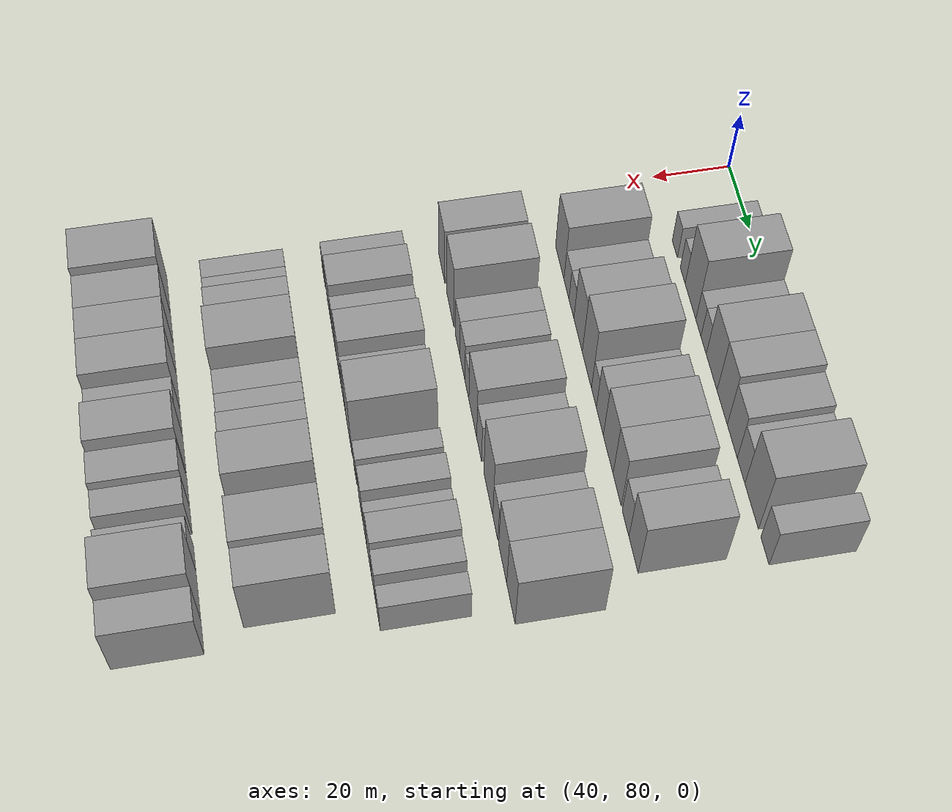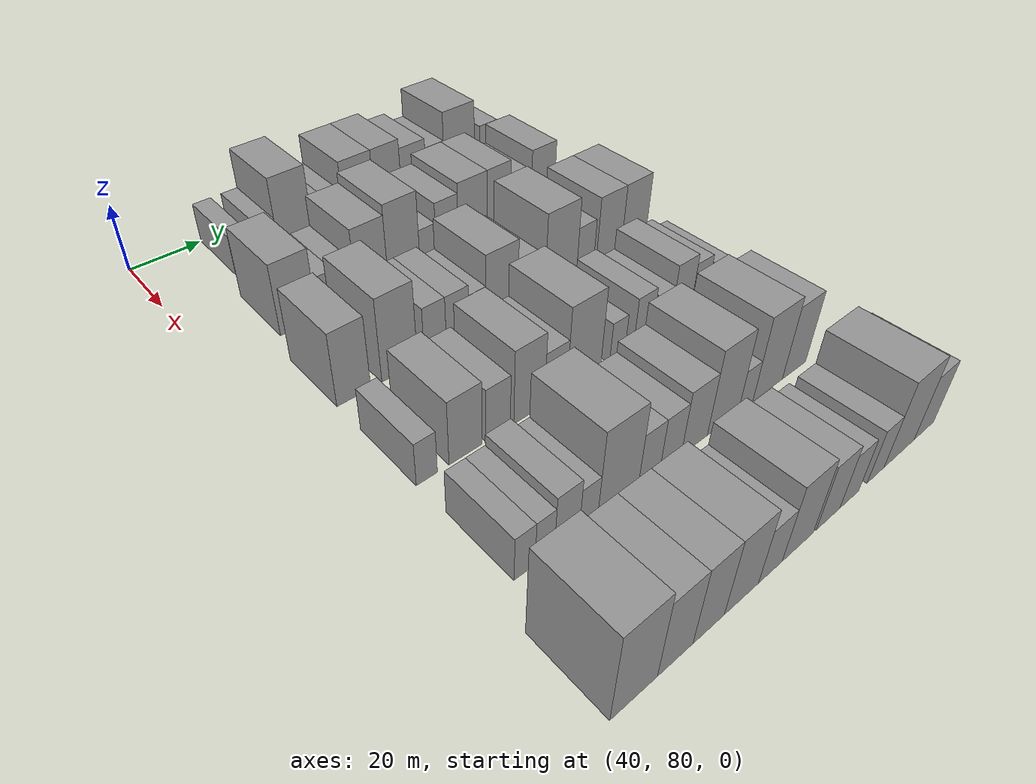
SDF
<sdf version="1.6">
 <world name="default">
  <model name="building_71">
   <static>1</static>
   <pose>50.0000 102.9779 0 0.000000 0.000000 0.000000</pose>
   <link name="link">
    <pose>0 0 6.00 0 0 0</pose>
    <collision name="collision"><geometry><box><size>20.0000 5.2904 12.0000</size></box></geometry></collision>
    <visual name="visual">
     <cast_shadows>0</cast_shadows>
     <geometry><box><size>20.0000 5.2904 12.0000</size></box></geometry>
     <material>
      <script>
       <uri>model://grey_wall/materials/scripts</uri>
       <uri>model://grey_wall/materials/textures</uri>
       <name>vrc/grey_wall</name>
      </script>
     </material>
    </visual>
   </link>
  </model>
  <model name="building_72">
   <static>1</static>
   <pose>50.0000 111.0729 0 0.000000 0.000000 0.000000</pose>
   <link name="link">
    <pose>0 0 6.00 0 0 0</pose>
    <collision name="collision"><geometry><box><size>20.0000 4.8996 12.0000</size></box></geometry></collision>
    <visual name="visual">
     <cast_shadows>0</cast_shadows>
     <geometry><box><size>20.0000 4.8996 12.0000</size></box></geometry>
     <material>
      <script>
       <uri>model://grey_wall/materials/scripts</uri>
       <uri>model://grey_wall/materials/textures</uri>
       <name>vrc/grey_wall</name>
      </script>
     </material>
    </visual>
   </link>
  </model>
  <model name="building_73">
   <static>1</static>
   <pose>50.0000 118.8591 0 0.000000 0.000000 0.000000</pose>
   <link name="link">
    <pose>0 0 12.00 0 0 0</pose>
    <collision name="collision"><geometry><box><size>20.0000 10.6728 24.0000</size></box></geometry></collision>
    <visual name="visual">
     <cast_shadows>0</cast_shadows>
     <geometry><box><size>20.0000 10.6728 24.0000</size></box></geometry>
     <material>
      <script>
       <uri>model://grey_wall/materials/scripts</uri>
       <uri>model://grey_wall/materials/textures</uri>
       <name>vrc/grey_wall</name>
      </script>
     </material>
    </visual>
   </link>
  </model>
  <model name="building_74">
   <static>1</static>
   <pose>50.0000 126.6838 0 0.000000 0.000000 0.000000</pose>
   <link name="link">
    <pose>0 0 6.00 0 0 0</pose>
    <collision name="collision"><geometry><box><size>20.0000 4.9766 12.0000</size></box></geometry></collision>
    <visual name="visual">
     <cast_shadows>0</cast_shadows>
     <geometry><box><size>20.0000 4.9766 12.0000</size></box></geometry>
     <material>
      <script>
       <uri>model://grey_wall/materials/scripts</uri>
       <uri>model://grey_wall/materials/textures</uri>
       <name>vrc/grey_wall</name>
      </script>
     </material>
    </visual>
   </link>
  </model>
  <model name="building_75">
   <static>1</static>
   <pose>50.0000 131.7215 0 0.000000 0.000000 0.000000</pose>
   <link name="link">
    <pose>0 0 6.00 0 0 0</pose>
    <collision name="collision"><geometry><box><size>20.0000 5.0987 12.0000</size></box></geometry></collision>
    <visual name="visual">
     <cast_shadows>0</cast_shadows>
     <geometry><box><size>20.0000 5.0987 12.0000</size></box></geometry>
     <material>
      <script>
       <uri>model://grey_wall/materials/scripts</uri>
       <uri>model://grey_wall/materials/textures</uri>
       <name>vrc/grey_wall</name>
      </script>
     </material>
    </visual>
   </link>
  </model>
  <model name="building_76">
   <static>1</static>
   <pose>50.0000 139.4059 0 0.000000 0.000000 0.000000</pose>
   <link name="link">
    <pose>0 0 10.50 0 0 0</pose>
    <collision name="collision"><geometry><box><size>20.0000 10.2702 21.0000</size></box></geometry></collision>
    <visual name="visual">
     <cast_shadows>0</cast_shadows>
     <geometry><box><size>20.0000 10.2702 21.0000</size></box></geometry>
     <material>
      <script>
       <uri>model://grey_wall/materials/scripts</uri>
       <uri>model://grey_wall/materials/textures</uri>
       <name>vrc/grey_wall</name>
      </script>
     </material>
    </visual>
   </link>
  </model>
  <model name="building_77">
   <static>1</static>
   <pose>50.0000 149.2481 0 0.000000 0.000000 0.000000</pose>
   <link name="link">
    <pose>0 0 10.50 0 0 0</pose>
    <collision name="collision"><geometry><box><size>20.0000 9.4142 21.0000</size></box></geometry></collision>
    <visual name="visual">
     <cast_shadows>0</cast_shadows>
     <geometry><box><size>20.0000 9.4142 21.0000</size></box></geometry>
     <material>
      <script>
       <uri>model://grey_wall/materials/scripts</uri>
       <uri>model://grey_wall/materials/textures</uri>
       <name>vrc/grey_wall</name>
      </script>
     </material>
    </visual>
   </link>
  </model>
  <model name="building_78">
   <static>1</static>
   <pose>50.0000 158.4346 0 0.000000 0.000000 0.000000</pose>
   <link name="link">
    <pose>0 0 9.00 0 0 0</pose>
    <collision name="collision"><geometry><box><size>20.0000 8.9589 18.0000</size></box></geometry></collision>
    <visual name="visual">
     <cast_shadows>0</cast_shadows>
     <geometry><box><size>20.0000 8.9589 18.0000</size></box></geometry>
     <material>
      <script>
       <uri>model://grey_wall/materials/scripts</uri>
       <uri>model://grey_wall/materials/textures</uri>
       <name>vrc/grey_wall</name>
      </script>
     </material>
    </visual>
   </link>
  </model>
  <model name="building_79">
   <static>1</static>
   <pose>50.0000 166.2751 0 0.000000 0.000000 0.000000</pose>
   <link name="link">
    <pose>0 0 7.50 0 0 0</pose>
    <collision name="collision"><geometry><box><size>20.0000 6.7220 15.0000</size></box></geometry></collision>
    <visual name="visual">
     <cast_shadows>0</cast_shadows>
     <geometry><box><size>20.0000 6.7220 15.0000</size></box></geometry>
     <material>
      <script>
       <uri>model://grey_wall/materials/scripts</uri>
       <uri>model://grey_wall/materials/textures</uri>
       <name>vrc/grey_wall</name>
      </script>
     </material>
    </visual>
   </link>
  </model>
  <model name="building_80">
   <static>1</static>
   <pose>50.0000 175.4616 0 0.000000 0.000000 0.000000</pose>
   <link name="link">
    <pose>0 0 12.00 0 0 0</pose>
    <collision name="collision"><geometry><box><size>20.0000 11.6511 24.0000</size></box></geometry></collision>
    <visual name="visual">
     <cast_shadows>0</cast_shadows>
     <geometry><box><size>20.0000 11.6511 24.0000</size></box></geometry>
     <material>
      <script>
       <uri>model://grey_wall/materials/scripts</uri>
       <uri>model://grey_wall/materials/textures</uri>
       <name>vrc/grey_wall</name>
      </script>
     </material>
    </visual>
   </link>
  </model>
  <model name="building_81">
   <static>1</static>
   <pose>50.0000 186.7362 0 0.000000 0.000000 0.000000</pose>
   <link name="link">
    <pose>0 0 7.50 0 0 0</pose>
    <collision name="collision"><geometry><box><size>20.0000 6.8980 15.0000</size></box></geometry></collision>
    <visual name="visual">
     <cast_shadows>0</cast_shadows>
     <geometry><box><size>20.0000 6.8980 15.0000</size></box></geometry>
     <material>
      <script>
       <uri>model://grey_wall/materials/scripts</uri>
       <uri>model://grey_wall/materials/textures</uri>
       <name>vrc/grey_wall</name>
      </script>
     </material>
    </visual>
   </link>
  </model>
  <model name="building_178">
   <static>1</static>
   <pose>79.0000 102.1852 0 0.000000 0.000000 0.000000</pose>
   <link name="link">
    <pose>0 0 10.50 0 0 0</pose>
    <collision name="collision"><geometry><box><size>20.0000 10.2526 21.0000</size></box></geometry></collision>
    <visual name="visual">
     <cast_shadows>0</cast_shadows>
     <geometry><box><size>20.0000 10.2526 21.0000</size></box></geometry>
     <material>
      <script>
       <uri>model://grey_wall/materials/scripts</uri>
       <uri>model://grey_wall/materials/textures</uri>
       <name>vrc/grey_wall</name>
      </script>
     </material>
    </visual>
   </link>
  </model>
  <model name="building_179">
   <static>1</static>
   <pose>79.0000 110.2713 0 0.000000 0.000000 0.000000</pose>
   <link name="link">
    <pose>0 0 6.00 0 0 0</pose>
    <collision name="collision"><geometry><box><size>20.0000 5.9196 12.0000</size></box></geometry></collision>
    <visual name="visual">
     <cast_shadows>0</cast_shadows>
     <geometry><box><size>20.0000 5.9196 12.0000</size></box></geometry>
     <material>
      <script>
       <uri>model://grey_wall/materials/scripts</uri>
       <uri>model://grey_wall/materials/textures</uri>
       <name>vrc/grey_wall</name>
      </script>
     </material>
    </visual>
   </link>
  </model>
  <model name="building_180">
   <static>1</static>
   <pose>79.0000 116.1020 0 0.000000 0.000000 0.000000</pose>
   <link name="link">
    <pose>0 0 6.00 0 0 0</pose>
    <collision name="collision"><geometry><box><size>20.0000 5.7418 12.0000</size></box></geometry></collision>
    <visual name="visual">
     <cast_shadows>0</cast_shadows>
     <geometry><box><size>20.0000 5.7418 12.0000</size></box></geometry>
     <material>
      <script>
       <uri>model://grey_wall/materials/scripts</uri>
       <uri>model://grey_wall/materials/textures</uri>
       <name>vrc/grey_wall</name>
      </script>
     </material>
    </visual>
   </link>
  </model>
  <model name="building_181">
   <static>1</static>
   <pose>79.0000 123.8220 0 0.000000 0.000000 0.000000</pose>
   <link name="link">
    <pose>0 0 10.50 0 0 0</pose>
    <collision name="collision"><geometry><box><size>20.0000 9.6983 21.0000</size></box></geometry></collision>
    <visual name="visual">
     <cast_shadows>0</cast_shadows>
     <geometry><box><size>20.0000 9.6983 21.0000</size></box></geometry>
     <material>
      <script>
       <uri>model://grey_wall/materials/scripts</uri>
       <uri>model://grey_wall/materials/textures</uri>
       <name>vrc/grey_wall</name>
      </script>
     </material>
    </visual>
   </link>
  </model>
  <model name="building_182">
   <static>1</static>
   <pose>79.0000 133.7824 0 0.000000 0.000000 0.000000</pose>
   <link name="link">
    <pose>0 0 12.00 0 0 0</pose>
    <collision name="collision"><geometry><box><size>20.0000 10.2224 24.0000</size></box></geometry></collision>
    <visual name="visual">
     <cast_shadows>0</cast_shadows>
     <geometry><box><size>20.0000 10.2224 24.0000</size></box></geometry>
     <material>
      <script>
       <uri>model://grey_wall/materials/scripts</uri>
       <uri>model://grey_wall/materials/textures</uri>
       <name>vrc/grey_wall</name>
      </script>
     </material>
    </visual>
   </link>
  </model>
  <model name="building_183">
   <static>1</static>
   <pose>79.0000 141.5916 0 0.000000 0.000000 0.000000</pose>
   <link name="link">
    <pose>0 0 6.00 0 0 0</pose>
    <collision name="collision"><geometry><box><size>20.0000 5.3961 12.0000</size></box></geometry></collision>
    <visual name="visual">
     <cast_shadows>0</cast_shadows>
     <geometry><box><size>20.0000 5.3961 12.0000</size></box></geometry>
     <material>
      <script>
       <uri>model://grey_wall/materials/scripts</uri>
       <uri>model://grey_wall/materials/textures</uri>
       <name>vrc/grey_wall</name>
      </script>
     </material>
    </visual>
   </link>
  </model>
  <model name="building_184">
   <static>1</static>
   <pose>79.0000 148.0615 0 0.000000 0.000000 0.000000</pose>
   <link name="link">
    <pose>0 0 9.00 0 0 0</pose>
    <collision name="collision"><geometry><box><size>20.0000 7.5436 18.0000</size></box></geometry></collision>
    <visual name="visual">
     <cast_shadows>0</cast_shadows>
     <geometry><box><size>20.0000 7.5436 18.0000</size></box></geometry>
     <material>
      <script>
       <uri>model://grey_wall/materials/scripts</uri>
       <uri>model://grey_wall/materials/textures</uri>
       <name>vrc/grey_wall</name>
      </script>
     </material>
    </visual>
   </link>
  </model>
  <model name="building_185">
   <static>1</static>
   <pose>79.0000 156.9551 0 0.000000 0.000000 0.000000</pose>
   <link name="link">
    <pose>0 0 10.50 0 0 0</pose>
    <collision name="collision"><geometry><box><size>20.0000 10.2437 21.0000</size></box></geometry></collision>
    <visual name="visual">
     <cast_shadows>0</cast_shadows>
     <geometry><box><size>20.0000 10.2437 21.0000</size></box></geometry>
     <material>
      <script>
       <uri>model://grey_wall/materials/scripts</uri>
       <uri>model://grey_wall/materials/textures</uri>
       <name>vrc/grey_wall</name>
      </script>
     </material>
    </visual>
   </link>
  </model>
  <model name="building_186">
   <static>1</static>
   <pose>79.0000 166.2853 0 0.000000 0.000000 0.000000</pose>
   <link name="link">
    <pose>0 0 10.50 0 0 0</pose>
    <collision name="collision"><geometry><box><size>20.0000 8.4167 21.0000</size></box></geometry></collision>
    <visual name="visual">
     <cast_shadows>0</cast_shadows>
     <geometry><box><size>20.0000 8.4167 21.0000</size></box></geometry>
     <material>
      <script>
       <uri>model://grey_wall/materials/scripts</uri>
       <uri>model://grey_wall/materials/textures</uri>
       <name>vrc/grey_wall</name>
      </script>
     </material>
    </visual>
   </link>
  </model>
  <model name="building_187">
   <static>1</static>
   <pose>79.0000 174.8404 0 0.000000 0.000000 0.000000</pose>
   <link name="link">
    <pose>0 0 7.50 0 0 0</pose>
    <collision name="collision"><geometry><box><size>20.0000 6.6935 15.0000</size></box></geometry></collision>
    <visual name="visual">
     <cast_shadows>0</cast_shadows>
     <geometry><box><size>20.0000 6.6935 15.0000</size></box></geometry>
     <material>
      <script>
       <uri>model://grey_wall/materials/scripts</uri>
       <uri>model://grey_wall/materials/textures</uri>
       <name>vrc/grey_wall</name>
      </script>
     </material>
    </visual>
   </link>
  </model>
  <model name="building_188">
   <static>1</static>
   <pose>79.0000 182.7150 0 0.000000 0.000000 0.000000</pose>
   <link name="link">
    <pose>0 0 10.50 0 0 0</pose>
    <collision name="collision"><geometry><box><size>20.0000 9.0557 21.0000</size></box></geometry></collision>
    <visual name="visual">
     <cast_shadows>0</cast_shadows>
     <geometry><box><size>20.0000 9.0557 21.0000</size></box></geometry>
     <material>
      <script>
       <uri>model://grey_wall/materials/scripts</uri>
       <uri>model://grey_wall/materials/textures</uri>
       <name>vrc/grey_wall</name>
      </script>
     </material>
    </visual>
   </link>
  </model>
  <model name="building_297">
   <static>1</static>
   <pose>108.0000 98.9713 0 0.000000 0.000000 0.000000</pose>
   <link name="link">
    <pose>0 0 10.50 0 0 0</pose>
    <collision name="collision"><geometry><box><size>20.0000 8.9882 21.0000</size></box></geometry></collision>
    <visual name="visual">
     <cast_shadows>0</cast_shadows>
     <geometry><box><size>20.0000 8.9882 21.0000</size></box></geometry>
     <material>
      <script>
       <uri>model://grey_wall/materials/scripts</uri>
       <uri>model://grey_wall/materials/textures</uri>
       <name>vrc/grey_wall</name>
      </script>
     </material>
    </visual>
   </link>
  </model>
  <model name="building_298">
   <static>1</static>
   <pose>108.0000 111.4779 0 0.000000 0.000000 0.000000</pose>
   <link name="link">
    <pose>0 0 12.00 0 0 0</pose>
    <collision name="collision"><geometry><box><size>20.0000 10.0250 24.0000</size></box></geometry></collision>
    <visual name="visual">
     <cast_shadows>0</cast_shadows>
     <geometry><box><size>20.0000 10.0250 24.0000</size></box></geometry>
     <material>
      <script>
       <uri>model://grey_wall/materials/scripts</uri>
       <uri>model://grey_wall/materials/textures</uri>
       <name>vrc/grey_wall</name>
      </script>
     </material>
    </visual>
   </link>
  </model>
  <model name="building_299">
   <static>1</static>
   <pose>108.0000 121.7499 0 0.000000 0.000000 0.000000</pose>
   <link name="link">
    <pose>0 0 7.50 0 0 0</pose>
    <collision name="collision"><geometry><box><size>20.0000 6.5190 15.0000</size></box></geometry></collision>
    <visual name="visual">
     <cast_shadows>0</cast_shadows>
     <geometry><box><size>20.0000 6.5190 15.0000</size></box></geometry>
     <material>
      <script>
       <uri>model://grey_wall/materials/scripts</uri>
       <uri>model://grey_wall/materials/textures</uri>
       <name>vrc/grey_wall</name>
      </script>
     </material>
    </visual>
   </link>
  </model>
  <model name="building_300">
   <static>1</static>
   <pose>108.0000 128.4428 0 0.000000 0.000000 0.000000</pose>
   <link name="link">
    <pose>0 0 7.50 0 0 0</pose>
    <collision name="collision"><geometry><box><size>20.0000 6.8668 15.0000</size></box></geometry></collision>
    <visual name="visual">
     <cast_shadows>0</cast_shadows>
     <geometry><box><size>20.0000 6.8668 15.0000</size></box></geometry>
     <material>
      <script>
       <uri>model://grey_wall/materials/scripts</uri>
       <uri>model://grey_wall/materials/textures</uri>
       <name>vrc/grey_wall</name>
      </script>
     </material>
    </visual>
   </link>
  </model>
  <model name="building_301">
   <static>1</static>
   <pose>108.0000 134.5554 0 0.000000 0.000000 0.000000</pose>
   <link name="link">
    <pose>0 0 6.00 0 0 0</pose>
    <collision name="collision"><geometry><box><size>20.0000 5.3585 12.0000</size></box></geometry></collision>
    <visual name="visual">
     <cast_shadows>0</cast_shadows>
     <geometry><box><size>20.0000 5.3585 12.0000</size></box></geometry>
     <material>
      <script>
       <uri>model://grey_wall/materials/scripts</uri>
       <uri>model://grey_wall/materials/textures</uri>
       <name>vrc/grey_wall</name>
      </script>
     </material>
    </visual>
   </link>
  </model>
  <model name="building_302">
   <static>1</static>
   <pose>108.0000 142.3782 0 0.000000 0.000000 0.000000</pose>
   <link name="link">
    <pose>0 0 10.50 0 0 0</pose>
    <collision name="collision"><geometry><box><size>20.0000 10.2870 21.0000</size></box></geometry></collision>
    <visual name="visual">
     <cast_shadows>0</cast_shadows>
     <geometry><box><size>20.0000 10.2870 21.0000</size></box></geometry>
     <material>
      <script>
       <uri>model://grey_wall/materials/scripts</uri>
       <uri>model://grey_wall/materials/textures</uri>
       <name>vrc/grey_wall</name>
      </script>
     </material>
    </visual>
   </link>
  </model>
  <model name="building_303">
   <static>1</static>
   <pose>108.0000 150.6469 0 0.000000 0.000000 0.000000</pose>
   <link name="link">
    <pose>0 0 7.50 0 0 0</pose>
    <collision name="collision"><geometry><box><size>20.0000 6.2504 15.0000</size></box></geometry></collision>
    <visual name="visual">
     <cast_shadows>0</cast_shadows>
     <geometry><box><size>20.0000 6.2504 15.0000</size></box></geometry>
     <material>
      <script>
       <uri>model://grey_wall/materials/scripts</uri>
       <uri>model://grey_wall/materials/textures</uri>
       <name>vrc/grey_wall</name>
      </script>
     </material>
    </visual>
   </link>
  </model>
  <model name="building_304">
   <static>1</static>
   <pose>108.0000 162.3793 0 0.000000 0.000000 0.000000</pose>
   <link name="link">
    <pose>0 0 12.00 0 0 0</pose>
    <collision name="collision"><geometry><box><size>20.0000 11.2144 24.0000</size></box></geometry></collision>
    <visual name="visual">
     <cast_shadows>0</cast_shadows>
     <geometry><box><size>20.0000 11.2144 24.0000</size></box></geometry>
     <material>
      <script>
       <uri>model://grey_wall/materials/scripts</uri>
       <uri>model://grey_wall/materials/textures</uri>
       <name>vrc/grey_wall</name>
      </script>
     </material>
    </visual>
   </link>
  </model>
  <model name="building_305">
   <static>1</static>
   <pose>108.0000 171.1098 0 0.000000 0.000000 0.000000</pose>
   <link name="link">
    <pose>0 0 7.50 0 0 0</pose>
    <collision name="collision"><geometry><box><size>20.0000 6.2465 15.0000</size></box></geometry></collision>
    <visual name="visual">
     <cast_shadows>0</cast_shadows>
     <geometry><box><size>20.0000 6.2465 15.0000</size></box></geometry>
     <material>
      <script>
       <uri>model://grey_wall/materials/scripts</uri>
       <uri>model://grey_wall/materials/textures</uri>
       <name>vrc/grey_wall</name>
      </script>
     </material>
    </visual>
   </link>
  </model>
  <model name="building_306">
   <static>1</static>
   <pose>108.0000 180.0224 0 0.000000 0.000000 0.000000</pose>
   <link name="link">
    <pose>0 0 10.50 0 0 0</pose>
    <collision name="collision"><geometry><box><size>20.0000 9.5787 21.0000</size></box></geometry></collision>
    <visual name="visual">
     <cast_shadows>0</cast_shadows>
     <geometry><box><size>20.0000 9.5787 21.0000</size></box></geometry>
     <material>
      <script>
       <uri>model://grey_wall/materials/scripts</uri>
       <uri>model://grey_wall/materials/textures</uri>
       <name>vrc/grey_wall</name>
      </script>
     </material>
    </visual>
   </link>
  </model>
  <model name="building_307">
   <static>1</static>
   <pose>108.0000 189.6733 0 0.000000 0.000000 0.000000</pose>
   <link name="link">
    <pose>0 0 10.50 0 0 0</pose>
    <collision name="collision"><geometry><box><size>20.0000 9.7231 21.0000</size></box></geometry></collision>
    <visual name="visual">
     <cast_shadows>0</cast_shadows>
     <geometry><box><size>20.0000 9.7231 21.0000</size></box></geometry>
     <material>
      <script>
       <uri>model://grey_wall/materials/scripts</uri>
       <uri>model://grey_wall/materials/textures</uri>
       <name>vrc/grey_wall</name>
      </script>
     </material>
    </visual>
   </link>
  </model>
  <model name="building_409">
   <static>1</static>
   <pose>137.0000 97.3479 0 0.000000 0.000000 0.000000</pose>
   <link name="link">
    <pose>0 0 6.00 0 0 0</pose>
    <collision name="collision"><geometry><box><size>20.0000 5.3239 12.0000</size></box></geometry></collision>
    <visual name="visual">
     <cast_shadows>0</cast_shadows>
     <geometry><box><size>20.0000 5.3239 12.0000</size></box></geometry>
     <material>
      <script>
       <uri>model://grey_wall/materials/scripts</uri>
       <uri>model://grey_wall/materials/textures</uri>
       <name>vrc/grey_wall</name>
      </script>
     </material>
    </visual>
   </link>
  </model>
  <model name="building_410">
   <static>1</static>
   <pose>137.0000 107.4400 0 0.000000 0.000000 0.000000</pose>
   <link name="link">
    <pose>0 0 9.00 0 0 0</pose>
    <collision name="collision"><geometry><box><size>20.0000 8.8602 18.0000</size></box></geometry></collision>
    <visual name="visual">
     <cast_shadows>0</cast_shadows>
     <geometry><box><size>20.0000 8.8602 18.0000</size></box></geometry>
     <material>
      <script>
       <uri>model://grey_wall/materials/scripts</uri>
       <uri>model://grey_wall/materials/textures</uri>
       <name>vrc/grey_wall</name>
      </script>
     </material>
    </visual>
   </link>
  </model>
  <model name="building_411">
   <static>1</static>
   <pose>137.0000 116.2746 0 0.000000 0.000000 0.000000</pose>
   <link name="link">
    <pose>0 0 7.50 0 0 0</pose>
    <collision name="collision"><geometry><box><size>20.0000 6.8091 15.0000</size></box></geometry></collision>
    <visual name="visual">
     <cast_shadows>0</cast_shadows>
     <geometry><box><size>20.0000 6.8091 15.0000</size></box></geometry>
     <material>
      <script>
       <uri>model://grey_wall/materials/scripts</uri>
       <uri>model://grey_wall/materials/textures</uri>
       <name>vrc/grey_wall</name>
      </script>
     </material>
    </visual>
   </link>
  </model>
  <model name="building_412">
   <static>1</static>
   <pose>137.0000 125.1490 0 0.000000 0.000000 0.000000</pose>
   <link name="link">
    <pose>0 0 10.50 0 0 0</pose>
    <collision name="collision"><geometry><box><size>20.0000 8.9396 21.0000</size></box></geometry></collision>
    <visual name="visual">
     <cast_shadows>0</cast_shadows>
     <geometry><box><size>20.0000 8.9396 21.0000</size></box></geometry>
     <material>
      <script>
       <uri>model://grey_wall/materials/scripts</uri>
       <uri>model://grey_wall/materials/textures</uri>
       <name>vrc/grey_wall</name>
      </script>
     </material>
    </visual>
   </link>
  </model>
  <model name="building_413">
   <static>1</static>
   <pose>137.0000 133.0528 0 0.000000 0.000000 0.000000</pose>
   <link name="link">
    <pose>0 0 7.50 0 0 0</pose>
    <collision name="collision"><geometry><box><size>20.0000 6.8679 15.0000</size></box></geometry></collision>
    <visual name="visual">
     <cast_shadows>0</cast_shadows>
     <geometry><box><size>20.0000 6.8679 15.0000</size></box></geometry>
     <material>
      <script>
       <uri>model://grey_wall/materials/scripts</uri>
       <uri>model://grey_wall/materials/textures</uri>
       <name>vrc/grey_wall</name>
      </script>
     </material>
    </visual>
   </link>
  </model>
  <model name="building_414">
   <static>1</static>
   <pose>137.0000 141.8436 0 0.000000 0.000000 0.000000</pose>
   <link name="link">
    <pose>0 0 12.00 0 0 0</pose>
    <collision name="collision"><geometry><box><size>20.0000 10.7137 24.0000</size></box></geometry></collision>
    <visual name="visual">
     <cast_shadows>0</cast_shadows>
     <geometry><box><size>20.0000 10.7137 24.0000</size></box></geometry>
     <material>
      <script>
       <uri>model://grey_wall/materials/scripts</uri>
       <uri>model://grey_wall/materials/textures</uri>
       <name>vrc/grey_wall</name>
      </script>
     </material>
    </visual>
   </link>
  </model>
  <model name="building_415">
   <static>1</static>
   <pose>137.0000 152.7189 0 0.000000 0.000000 0.000000</pose>
   <link name="link">
    <pose>0 0 6.00 0 0 0</pose>
    <collision name="collision"><geometry><box><size>20.0000 5.0369 12.0000</size></box></geometry></collision>
    <visual name="visual">
     <cast_shadows>0</cast_shadows>
     <geometry><box><size>20.0000 5.0369 12.0000</size></box></geometry>
     <material>
      <script>
       <uri>model://grey_wall/materials/scripts</uri>
       <uri>model://grey_wall/materials/textures</uri>
       <name>vrc/grey_wall</name>
      </script>
     </material>
    </visual>
   </link>
  </model>
  <model name="building_416">
   <static>1</static>
   <pose>137.0000 161.4626 0 0.000000 0.000000 0.000000</pose>
   <link name="link">
    <pose>0 0 7.50 0 0 0</pose>
    <collision name="collision"><geometry><box><size>20.0000 6.4505 15.0000</size></box></geometry></collision>
    <visual name="visual">
     <cast_shadows>0</cast_shadows>
     <geometry><box><size>20.0000 6.4505 15.0000</size></box></geometry>
     <material>
      <script>
       <uri>model://grey_wall/materials/scripts</uri>
       <uri>model://grey_wall/materials/textures</uri>
       <name>vrc/grey_wall</name>
      </script>
     </material>
    </visual>
   </link>
  </model>
  <model name="building_417">
   <static>1</static>
   <pose>137.0000 168.5915 0 0.000000 0.000000 0.000000</pose>
   <link name="link">
    <pose>0 0 6.00 0 0 0</pose>
    <collision name="collision"><geometry><box><size>20.0000 5.8073 12.0000</size></box></geometry></collision>
    <visual name="visual">
     <cast_shadows>0</cast_shadows>
     <geometry><box><size>20.0000 5.8073 12.0000</size></box></geometry>
     <material>
      <script>
       <uri>model://grey_wall/materials/scripts</uri>
       <uri>model://grey_wall/materials/textures</uri>
       <name>vrc/grey_wall</name>
      </script>
     </material>
    </visual>
   </link>
  </model>
  <model name="building_418">
   <static>1</static>
   <pose>137.0000 175.1611 0 0.000000 0.000000 0.000000</pose>
   <link name="link">
    <pose>0 0 9.00 0 0 0</pose>
    <collision name="collision"><geometry><box><size>20.0000 7.3321 18.0000</size></box></geometry></collision>
    <visual name="visual">
     <cast_shadows>0</cast_shadows>
     <geometry><box><size>20.0000 7.3321 18.0000</size></box></geometry>
     <material>
      <script>
       <uri>model://grey_wall/materials/scripts</uri>
       <uri>model://grey_wall/materials/textures</uri>
       <name>vrc/grey_wall</name>
      </script>
     </material>
    </visual>
   </link>
  </model>
  <model name="building_419">
   <static>1</static>
   <pose>137.0000 181.8588 0 0.000000 0.000000 0.000000</pose>
   <link name="link">
    <pose>0 0 7.50 0 0 0</pose>
    <collision name="collision"><geometry><box><size>20.0000 6.0633 15.0000</size></box></geometry></collision>
    <visual name="visual">
     <cast_shadows>0</cast_shadows>
     <geometry><box><size>20.0000 6.0633 15.0000</size></box></geometry>
     <material>
      <script>
       <uri>model://grey_wall/materials/scripts</uri>
       <uri>model://grey_wall/materials/textures</uri>
       <name>vrc/grey_wall</name>
      </script>
     </material>
    </visual>
   </link>
  </model>
  <model name="building_420">
   <static>1</static>
   <pose>137.0000 188.4923 0 0.000000 0.000000 0.000000</pose>
   <link name="link">
    <pose>0 0 6.00 0 0 0</pose>
    <collision name="collision"><geometry><box><size>20.0000 5.2036 12.0000</size></box></geometry></collision>
    <visual name="visual">
     <cast_shadows>0</cast_shadows>
     <geometry><box><size>20.0000 5.2036 12.0000</size></box></geometry>
     <material>
      <script>
       <uri>model://grey_wall/materials/scripts</uri>
       <uri>model://grey_wall/materials/textures</uri>
       <name>vrc/grey_wall</name>
      </script>
     </material>
    </visual>
   </link>
  </model>
  <model name="building_521">
   <static>1</static>
   <pose>166.0000 97.7814 0 0.000000 0.000000 0.000000</pose>
   <link name="link">
    <pose>0 0 6.00 0 0 0</pose>
    <collision name="collision"><geometry><box><size>20.0000 5.1542 12.0000</size></box></geometry></collision>
    <visual name="visual">
     <cast_shadows>0</cast_shadows>
     <geometry><box><size>20.0000 5.1542 12.0000</size></box></geometry>
     <material>
      <script>
       <uri>model://grey_wall/materials/scripts</uri>
       <uri>model://grey_wall/materials/textures</uri>
       <name>vrc/grey_wall</name>
      </script>
     </material>
    </visual>
   </link>
  </model>
  <model name="building_522">
   <static>1</static>
   <pose>166.0000 102.7958 0 0.000000 0.000000 0.000000</pose>
   <link name="link">
    <pose>0 0 6.00 0 0 0</pose>
    <collision name="collision"><geometry><box><size>20.0000 4.8746 12.0000</size></box></geometry></collision>
    <visual name="visual">
     <cast_shadows>0</cast_shadows>
     <geometry><box><size>20.0000 4.8746 12.0000</size></box></geometry>
     <material>
      <script>
       <uri>model://grey_wall/materials/scripts</uri>
       <uri>model://grey_wall/materials/textures</uri>
       <name>vrc/grey_wall</name>
      </script>
     </material>
    </visual>
   </link>
  </model>
  <model name="building_523">
   <static>1</static>
   <pose>166.0000 108.4774 0 0.000000 0.000000 0.000000</pose>
   <link name="link">
    <pose>0 0 7.50 0 0 0</pose>
    <collision name="collision"><geometry><box><size>20.0000 6.4887 15.0000</size></box></geometry></collision>
    <visual name="visual">
     <cast_shadows>0</cast_shadows>
     <geometry><box><size>20.0000 6.4887 15.0000</size></box></geometry>
     <material>
      <script>
       <uri>model://grey_wall/materials/scripts</uri>
       <uri>model://grey_wall/materials/textures</uri>
       <name>vrc/grey_wall</name>
      </script>
     </material>
    </visual>
   </link>
  </model>
  <model name="building_524">
   <static>1</static>
   <pose>166.0000 114.2203 0 0.000000 0.000000 0.000000</pose>
   <link name="link">
    <pose>0 0 6.00 0 0 0</pose>
    <collision name="collision"><geometry><box><size>20.0000 4.9970 12.0000</size></box></geometry></collision>
    <visual name="visual">
     <cast_shadows>0</cast_shadows>
     <geometry><box><size>20.0000 4.9970 12.0000</size></box></geometry>
     <material>
      <script>
       <uri>model://grey_wall/materials/scripts</uri>
       <uri>model://grey_wall/materials/textures</uri>
       <name>vrc/grey_wall</name>
      </script>
     </material>
    </visual>
   </link>
  </model>
  <model name="building_525">
   <static>1</static>
   <pose>166.0000 122.4583 0 0.000000 0.000000 0.000000</pose>
   <link name="link">
    <pose>0 0 12.00 0 0 0</pose>
    <collision name="collision"><geometry><box><size>20.0000 11.4790 24.0000</size></box></geometry></collision>
    <visual name="visual">
     <cast_shadows>0</cast_shadows>
     <geometry><box><size>20.0000 11.4790 24.0000</size></box></geometry>
     <material>
      <script>
       <uri>model://grey_wall/materials/scripts</uri>
       <uri>model://grey_wall/materials/textures</uri>
       <name>vrc/grey_wall</name>
      </script>
     </material>
    </visual>
   </link>
  </model>
  <model name="building_526">
   <static>1</static>
   <pose>166.0000 131.4412 0 0.000000 0.000000 0.000000</pose>
   <link name="link">
    <pose>0 0 7.50 0 0 0</pose>
    <collision name="collision"><geometry><box><size>20.0000 6.4867 15.0000</size></box></geometry></collision>
    <visual name="visual">
     <cast_shadows>0</cast_shadows>
     <geometry><box><size>20.0000 6.4867 15.0000</size></box></geometry>
     <material>
      <script>
       <uri>model://grey_wall/materials/scripts</uri>
       <uri>model://grey_wall/materials/textures</uri>
       <name>vrc/grey_wall</name>
      </script>
     </material>
    </visual>
   </link>
  </model>
  <model name="building_527">
   <static>1</static>
   <pose>166.0000 138.0143 0 0.000000 0.000000 0.000000</pose>
   <link name="link">
    <pose>0 0 7.50 0 0 0</pose>
    <collision name="collision"><geometry><box><size>20.0000 6.6596 15.0000</size></box></geometry></collision>
    <visual name="visual">
     <cast_shadows>0</cast_shadows>
     <geometry><box><size>20.0000 6.6596 15.0000</size></box></geometry>
     <material>
      <script>
       <uri>model://grey_wall/materials/scripts</uri>
       <uri>model://grey_wall/materials/textures</uri>
       <name>vrc/grey_wall</name>
      </script>
     </material>
    </visual>
   </link>
  </model>
  <model name="building_528">
   <static>1</static>
   <pose>166.0000 145.5884 0 0.000000 0.000000 0.000000</pose>
   <link name="link">
    <pose>0 0 9.00 0 0 0</pose>
    <collision name="collision"><geometry><box><size>20.0000 8.4886 18.0000</size></box></geometry></collision>
    <visual name="visual">
     <cast_shadows>0</cast_shadows>
     <geometry><box><size>20.0000 8.4886 18.0000</size></box></geometry>
     <material>
      <script>
       <uri>model://grey_wall/materials/scripts</uri>
       <uri>model://grey_wall/materials/textures</uri>
       <name>vrc/grey_wall</name>
      </script>
     </material>
    </visual>
   </link>
  </model>
  <model name="building_529">
   <static>1</static>
   <pose>166.0000 155.0815 0 0.000000 0.000000 0.000000</pose>
   <link name="link">
    <pose>0 0 12.00 0 0 0</pose>
    <collision name="collision"><geometry><box><size>20.0000 10.4975 24.0000</size></box></geometry></collision>
    <visual name="visual">
     <cast_shadows>0</cast_shadows>
     <geometry><box><size>20.0000 10.4975 24.0000</size></box></geometry>
     <material>
      <script>
       <uri>model://grey_wall/materials/scripts</uri>
       <uri>model://grey_wall/materials/textures</uri>
       <name>vrc/grey_wall</name>
      </script>
     </material>
    </visual>
   </link>
  </model>
  <model name="building_530">
   <static>1</static>
   <pose>166.0000 162.9344 0 0.000000 0.000000 0.000000</pose>
   <link name="link">
    <pose>0 0 6.00 0 0 0</pose>
    <collision name="collision"><geometry><box><size>20.0000 5.2083 12.0000</size></box></geometry></collision>
    <visual name="visual">
     <cast_shadows>0</cast_shadows>
     <geometry><box><size>20.0000 5.2083 12.0000</size></box></geometry>
     <material>
      <script>
       <uri>model://grey_wall/materials/scripts</uri>
       <uri>model://grey_wall/materials/textures</uri>
       <name>vrc/grey_wall</name>
      </script>
     </material>
    </visual>
   </link>
  </model>
  <model name="building_531">
   <static>1</static>
   <pose>166.0000 170.9725 0 0.000000 0.000000 0.000000</pose>
   <link name="link">
    <pose>0 0 12.00 0 0 0</pose>
    <collision name="collision"><geometry><box><size>20.0000 10.8679 24.0000</size></box></geometry></collision>
    <visual name="visual">
     <cast_shadows>0</cast_shadows>
     <geometry><box><size>20.0000 10.8679 24.0000</size></box></geometry>
     <material>
      <script>
       <uri>model://grey_wall/materials/scripts</uri>
       <uri>model://grey_wall/materials/textures</uri>
       <name>vrc/grey_wall</name>
      </script>
     </material>
    </visual>
   </link>
  </model>
  <model name="building_532">
   <static>1</static>
   <pose>166.0000 180.9080 0 0.000000 0.000000 0.000000</pose>
   <link name="link">
    <pose>0 0 10.50 0 0 0</pose>
    <collision name="collision"><geometry><box><size>20.0000 9.0032 21.0000</size></box></geometry></collision>
    <visual name="visual">
     <cast_shadows>0</cast_shadows>
     <geometry><box><size>20.0000 9.0032 21.0000</size></box></geometry>
     <material>
      <script>
       <uri>model://grey_wall/materials/scripts</uri>
       <uri>model://grey_wall/materials/textures</uri>
       <name>vrc/grey_wall</name>
      </script>
     </material>
    </visual>
   </link>
  </model>
  <model name="building_635">
   <static>1</static>
   <pose>195.0000 95.5704 0 0.000000 0.000000 0.000000</pose>
   <link name="link">
    <pose>0 0 12.00 0 0 0</pose>
    <collision name="collision"><geometry><box><size>20.0000 11.3202 24.0000</size></box></geometry></collision>
    <visual name="visual">
     <cast_shadows>0</cast_shadows>
     <geometry><box><size>20.0000 11.3202 24.0000</size></box></geometry>
     <material>
      <script>
       <uri>model://grey_wall/materials/scripts</uri>
       <uri>model://grey_wall/materials/textures</uri>
       <name>vrc/grey_wall</name>
      </script>
     </material>
    </visual>
   </link>
  </model>
  <model name="building_636">
   <static>1</static>
   <pose>195.0000 105.7425 0 0.000000 0.000000 0.000000</pose>
   <link name="link">
    <pose>0 0 10.50 0 0 0</pose>
    <collision name="collision"><geometry><box><size>20.0000 9.0238 21.0000</size></box></geometry></collision>
    <visual name="visual">
     <cast_shadows>0</cast_shadows>
     <geometry><box><size>20.0000 9.0238 21.0000</size></box></geometry>
     <material>
      <script>
       <uri>model://grey_wall/materials/scripts</uri>
       <uri>model://grey_wall/materials/textures</uri>
       <name>vrc/grey_wall</name>
      </script>
     </material>
    </visual>
   </link>
  </model>
  <model name="building_637">
   <static>1</static>
   <pose>195.0000 114.4793 0 0.000000 0.000000 0.000000</pose>
   <link name="link">
    <pose>0 0 10.50 0 0 0</pose>
    <collision name="collision"><geometry><box><size>20.0000 8.4498 21.0000</size></box></geometry></collision>
    <visual name="visual">
     <cast_shadows>0</cast_shadows>
     <geometry><box><size>20.0000 8.4498 21.0000</size></box></geometry>
     <material>
      <script>
       <uri>model://grey_wall/materials/scripts</uri>
       <uri>model://grey_wall/materials/textures</uri>
       <name>vrc/grey_wall</name>
      </script>
     </material>
    </visual>
   </link>
  </model>
  <model name="building_638">
   <static>1</static>
   <pose>195.0000 123.5794 0 0.000000 0.000000 0.000000</pose>
   <link name="link">
    <pose>0 0 10.50 0 0 0</pose>
    <collision name="collision"><geometry><box><size>20.0000 9.7504 21.0000</size></box></geometry></collision>
    <visual name="visual">
     <cast_shadows>0</cast_shadows>
     <geometry><box><size>20.0000 9.7504 21.0000</size></box></geometry>
     <material>
      <script>
       <uri>model://grey_wall/materials/scripts</uri>
       <uri>model://grey_wall/materials/textures</uri>
       <name>vrc/grey_wall</name>
      </script>
     </material>
    </visual>
   </link>
  </model>
  <model name="building_639">
   <static>1</static>
   <pose>195.0000 132.0365 0 0.000000 0.000000 0.000000</pose>
   <link name="link">
    <pose>0 0 7.50 0 0 0</pose>
    <collision name="collision"><geometry><box><size>20.0000 7.1637 15.0000</size></box></geometry></collision>
    <visual name="visual">
     <cast_shadows>0</cast_shadows>
     <geometry><box><size>20.0000 7.1637 15.0000</size></box></geometry>
     <material>
      <script>
       <uri>model://grey_wall/materials/scripts</uri>
       <uri>model://grey_wall/materials/textures</uri>
       <name>vrc/grey_wall</name>
      </script>
     </material>
    </visual>
   </link>
  </model>
  <model name="building_640">
   <static>1</static>
   <pose>195.0000 140.5492 0 0.000000 0.000000 0.000000</pose>
   <link name="link">
    <pose>0 0 10.50 0 0 0</pose>
    <collision name="collision"><geometry><box><size>20.0000 9.8619 21.0000</size></box></geometry></collision>
    <visual name="visual">
     <cast_shadows>0</cast_shadows>
     <geometry><box><size>20.0000 9.8619 21.0000</size></box></geometry>
     <material>
      <script>
       <uri>model://grey_wall/materials/scripts</uri>
       <uri>model://grey_wall/materials/textures</uri>
       <name>vrc/grey_wall</name>
      </script>
     </material>
    </visual>
   </link>
  </model>
  <model name="building_641">
   <static>1</static>
   <pose>195.0000 150.4441 0 0.000000 0.000000 0.000000</pose>
   <link name="link">
    <pose>0 0 9.00 0 0 0</pose>
    <collision name="collision"><geometry><box><size>20.0000 7.9280 18.0000</size></box></geometry></collision>
    <visual name="visual">
     <cast_shadows>0</cast_shadows>
     <geometry><box><size>20.0000 7.9280 18.0000</size></box></geometry>
     <material>
      <script>
       <uri>model://grey_wall/materials/scripts</uri>
       <uri>model://grey_wall/materials/textures</uri>
       <name>vrc/grey_wall</name>
      </script>
     </material>
    </visual>
   </link>
  </model>
  <model name="building_642">
   <static>1</static>
   <pose>195.0000 157.7591 0 0.000000 0.000000 0.000000</pose>
   <link name="link">
    <pose>0 0 7.50 0 0 0</pose>
    <collision name="collision"><geometry><box><size>20.0000 6.7020 15.0000</size></box></geometry></collision>
    <visual name="visual">
     <cast_shadows>0</cast_shadows>
     <geometry><box><size>20.0000 6.7020 15.0000</size></box></geometry>
     <material>
      <script>
       <uri>model://grey_wall/materials/scripts</uri>
       <uri>model://grey_wall/materials/textures</uri>
       <name>vrc/grey_wall</name>
      </script>
     </material>
    </visual>
   </link>
  </model>
  <model name="building_643">
   <static>1</static>
   <pose>195.0000 167.2336 0 0.000000 0.000000 0.000000</pose>
   <link name="link">
    <pose>0 0 7.50 0 0 0</pose>
    <collision name="collision"><geometry><box><size>20.0000 6.2471 15.0000</size></box></geometry></collision>
    <visual name="visual">
     <cast_shadows>0</cast_shadows>
     <geometry><box><size>20.0000 6.2471 15.0000</size></box></geometry>
     <material>
      <script>
       <uri>model://grey_wall/materials/scripts</uri>
       <uri>model://grey_wall/materials/textures</uri>
       <name>vrc/grey_wall</name>
      </script>
     </material>
    </visual>
   </link>
  </model>
  <model name="building_644">
   <static>1</static>
   <pose>195.0000 176.2258 0 0.000000 0.000000 0.000000</pose>
   <link name="link">
    <pose>0 0 12.00 0 0 0</pose>
    <collision name="collision"><geometry><box><size>20.0000 11.7374 24.0000</size></box></geometry></collision>
    <visual name="visual">
     <cast_shadows>0</cast_shadows>
     <geometry><box><size>20.0000 11.7374 24.0000</size></box></geometry>
     <material>
      <script>
       <uri>model://grey_wall/materials/scripts</uri>
       <uri>model://grey_wall/materials/textures</uri>
       <name>vrc/grey_wall</name>
      </script>
     </material>
    </visual>
   </link>
  </model>
  <model name="building_645">
   <static>1</static>
   <pose>195.0000 186.1058 0 0.000000 0.000000 0.000000</pose>
   <link name="link">
    <pose>0 0 9.00 0 0 0</pose>
    <collision name="collision"><geometry><box><size>20.0000 8.0226 18.0000</size></box></geometry></collision>
    <visual name="visual">
     <cast_shadows>0</cast_shadows>
     <geometry><box><size>20.0000 8.0226 18.0000</size></box></geometry>
     <material>
      <script>
       <uri>model://grey_wall/materials/scripts</uri>
       <uri>model://grey_wall/materials/textures</uri>
       <name>vrc/grey_wall</name>
      </script>
     </material>
    </visual>
   </link>
  </model>
 </world>
</sdf>
